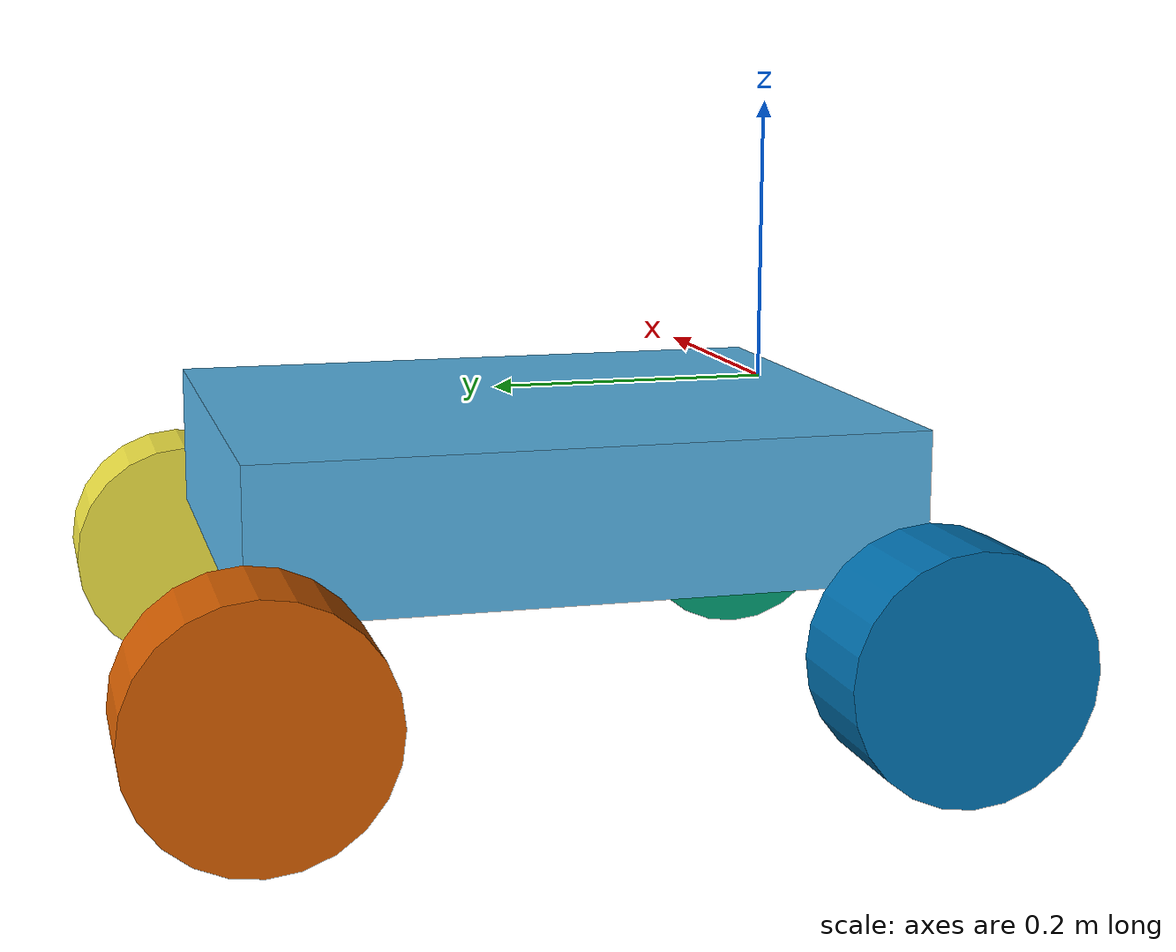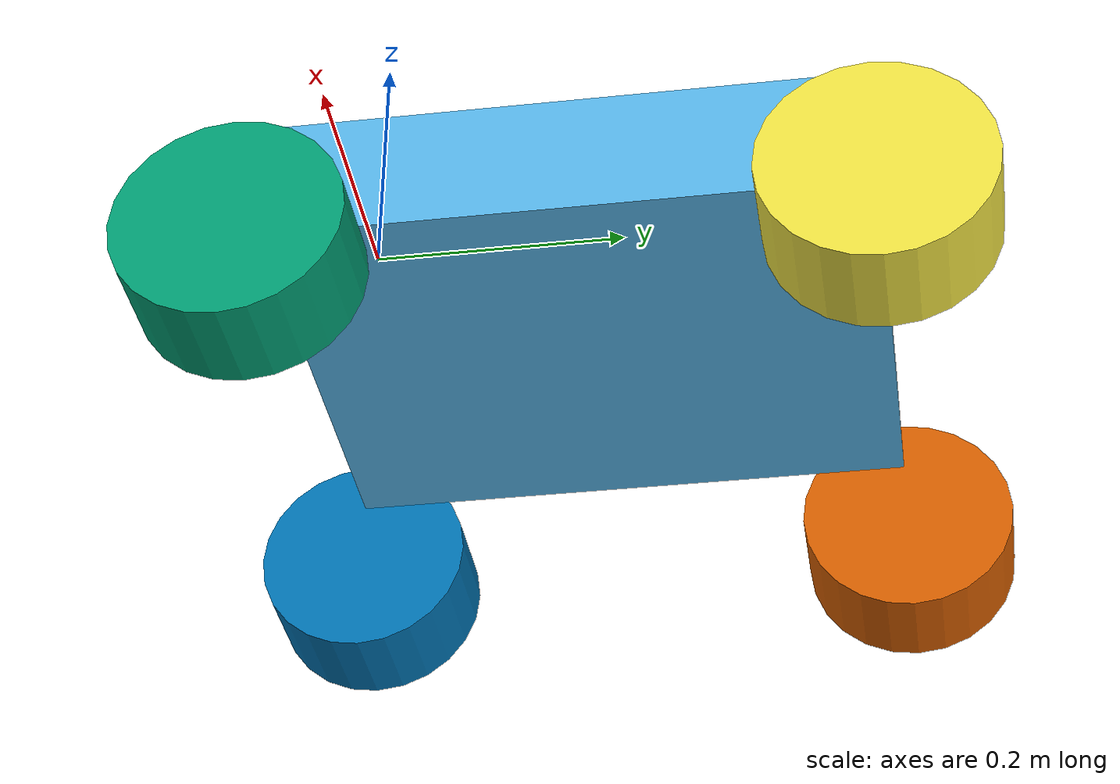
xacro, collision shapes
<?xml version="1.0"?>
<!-- SPDX-License-Identifier: BSD-3-Clause; upstream attribution: ../UPSTREAM.md -->
<robot xmlns:xacro="http://www.ros.org/wiki/xacro" name="scout_mini">
  <!-- LiDAR +X points left: base_link -> LiDAR yaw = +90 degrees, confirmed by user. -->
  <xacro:arg name="lidar_yaw" default="1.5707963267948966"/>
  <xacro:property name="lidar_yaw" value="$(arg lidar_yaw)"/>

  <!-- Measured envelope from the existing vehicle model; SI units. -->
  <xacro:property name="vehicle_length" value="0.62260"/>
  <xacro:property name="vehicle_width" value="0.53302"/>
  <xacro:property name="base_height" value="0.18108"/>
  <xacro:property name="ground_clearance" value="0.130"/>
  <xacro:property name="wheel_radius" value="0.085"/>
  <xacro:property name="wheel_width" value="0.080"/>
  <xacro:property name="wheel_x" value="${(vehicle_length - 2*wheel_radius)/2}"/>
  <xacro:property name="wheel_y" value="${(vehicle_width - wheel_width)/2}"/>
  <xacro:property name="wheel_z" value="${wheel_radius - base_height}"/>
  <xacro:property name="body_length" value="${2*wheel_x}"/>
  <xacro:property name="body_width" value="${vehicle_width - 2*wheel_width}"/>
  <xacro:property name="body_height" value="${2*(base_height - ground_clearance)}"/>

  <!-- LiDAR origin in vehicle base_link, inherited from the previous project; not remeasured here. -->
  <xacro:property name="base_lidar_x" value="0.202"/>
  <xacro:property name="base_lidar_y" value="0.0"/>
  <xacro:property name="base_lidar_z" value="0.10150"/>
  <!-- LiDAR origin in IMU/body: match FASTLIO2 lio.yaml r_il=I and t_il. -->
  <xacro:property name="imu_lidar_x" value="-0.011"/>
  <xacro:property name="imu_lidar_y" value="-0.02329"/>
  <xacro:property name="imu_lidar_z" value="0.04412"/>

  <link name="body"/>
  <joint name="body_to_base_link" type="fixed">
    <parent link="body"/>
    <child link="base_link"/>
    <!-- T_I_B = T_I_L * inverse(T_B_L); installation roll/pitch and r_il are zero. -->
    <origin xyz="${imu_lidar_x - cos(lidar_yaw)*base_lidar_x - sin(lidar_yaw)*base_lidar_y}
                 ${imu_lidar_y + sin(lidar_yaw)*base_lidar_x - cos(lidar_yaw)*base_lidar_y}
                 ${imu_lidar_z - base_lidar_z}" rpy="0 0 ${-lidar_yaw}"/>
  </joint>

  <link name="base_link">
    <!-- Official DAE axes: -Z forward, +Y up. Center and scale to the measured shell. -->
    <visual>
      <origin xyz="${-0.01769985*body_length/0.5606069} 0 ${0.022091165*body_height/0.18218067}"
              rpy="${pi/2} 0 ${-pi/2}"/>
      <geometry>
        <mesh filename="package://scout_mini_description/meshes/scout_mini_base_link2.dae"
              scale="${body_width/0.3898762} ${body_height/0.18218067} ${body_length/0.5606069}"/>
      </geometry>
    </visual>
    <collision>
      <geometry><box size="${body_length} ${body_width} ${body_height}"/></geometry>
    </collision>
  </link>

  <!-- Fixed wheels provide a complete static TF tree without fabricated joint states. -->
  <xacro:macro name="wheel" params="name x y">
    <joint name="${name}_wheel_joint" type="fixed">
      <parent link="base_link"/>
      <child link="${name}_wheel_link"/>
      <origin xyz="${x} ${y} ${wheel_z}" rpy="${-pi/2} 0 0"/>
    </joint>
    <link name="${name}_wheel_link">
      <visual>
        <origin xyz="${0.00000755*2*wheel_radius/0.1598965}
                     ${0.00101843*2*wheel_radius/0.1599533}
                     ${-0.01900502*wheel_width/0.132}"/>
        <geometry>
          <mesh filename="package://scout_mini_description/meshes/wheel.dae"
                scale="${2*wheel_radius/0.1598965} ${2*wheel_radius/0.1599533} ${wheel_width/0.132}"/>
        </geometry>
      </visual>
      <collision>
        <geometry><cylinder radius="${wheel_radius}" length="${wheel_width}"/></geometry>
      </collision>
    </link>
  </xacro:macro>
  <xacro:wheel name="front_left" x="${wheel_x}" y="${wheel_y}"/>
  <xacro:wheel name="rear_left" x="${-wheel_x}" y="${wheel_y}"/>
  <xacro:wheel name="front_right" x="${wheel_x}" y="${-wheel_y}"/>
  <xacro:wheel name="rear_right" x="${-wheel_x}" y="${-wheel_y}"/>

  <link name="lidar_link"/>
  <joint name="body_to_lidar" type="fixed">
    <parent link="body"/>
    <child link="lidar_link"/>
    <origin xyz="${imu_lidar_x} ${imu_lidar_y} ${imu_lidar_z}" rpy="0 0 0"/>
  </joint>
  <link name="livox_frame"/>
  <joint name="lidar_to_livox_frame" type="fixed">
    <parent link="lidar_link"/>
    <child link="livox_frame"/>
    <origin xyz="0 0 0" rpy="0 0 0"/>
  </joint>
</robot>
